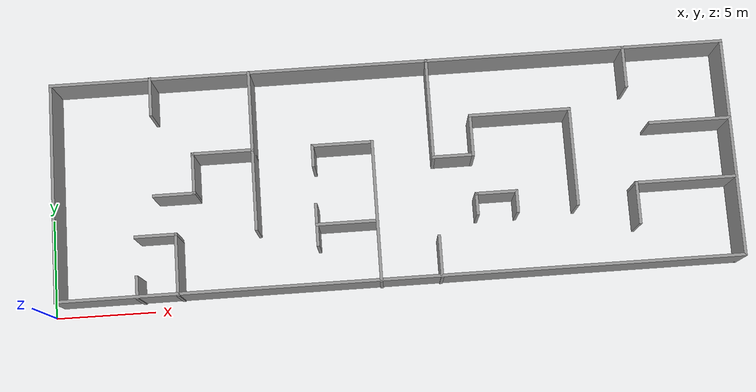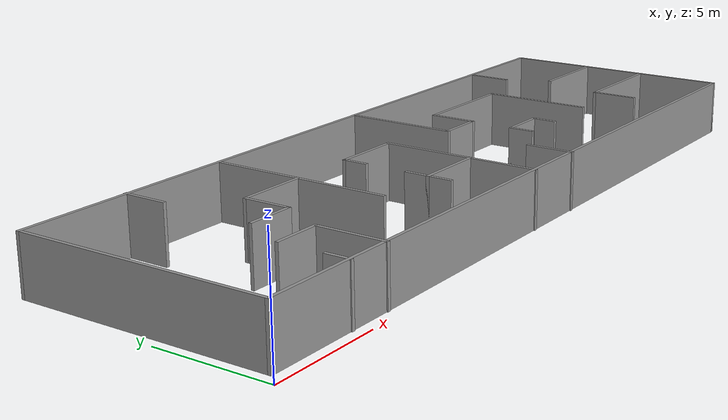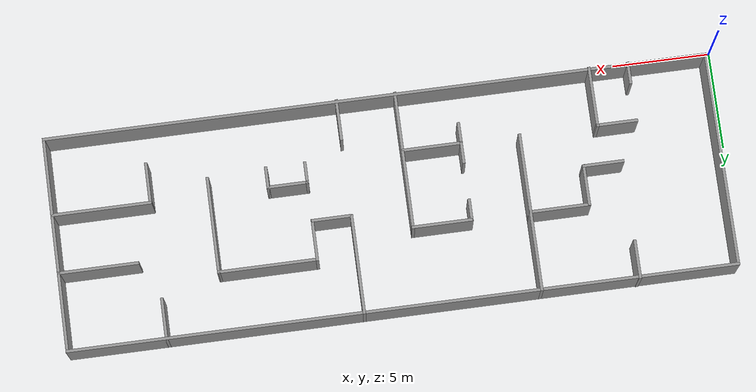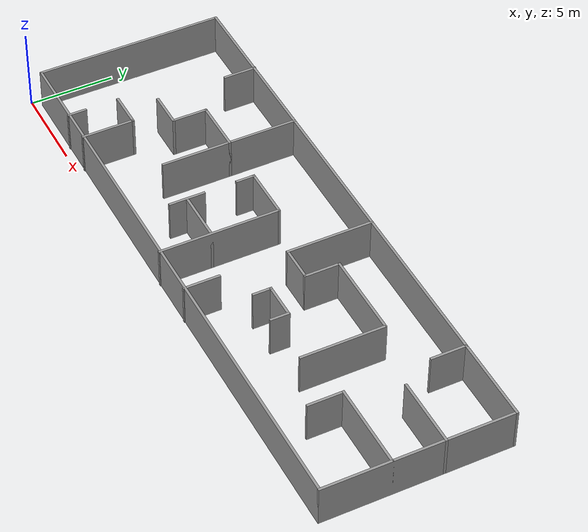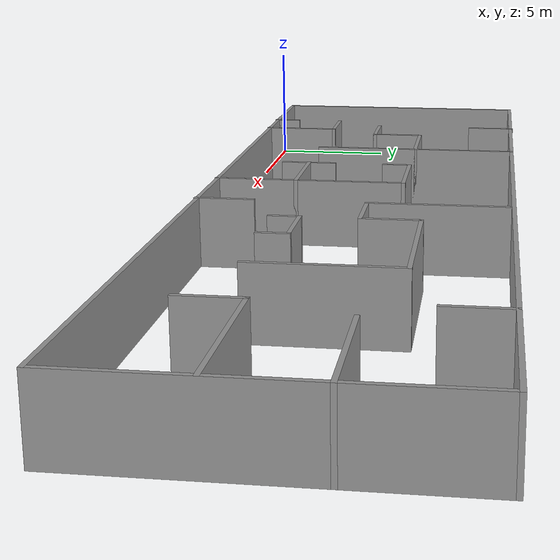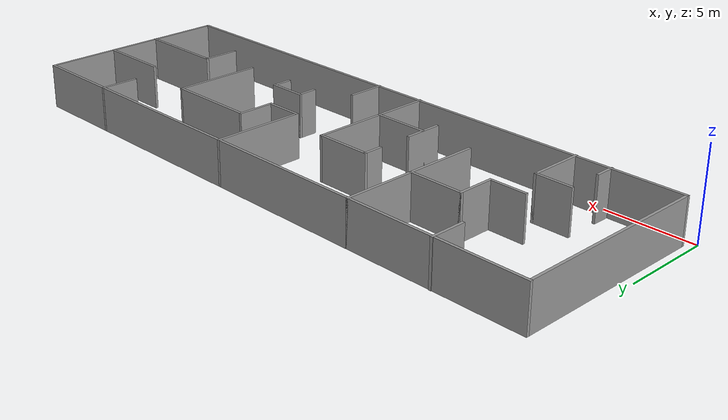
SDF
<?xml version='1.0'?>
<sdf version='1.6'>
  <model name='hackathon_maze'>
    <pose frame=''>17.5 6.01521 0 0 -0 0</pose>
    <link name='Wall_25'>
      <collision name='Wall_25_Collision'>
        <geometry>
          <box>
            <size>10.954 0.15 2.5</size>
          </box>
        </geometry>
        <pose frame=''>0 0 1.25 0 -0 0</pose>
      </collision>
      <visual name='Wall_25_Visual'>
        <pose frame=''>0 0 1.25 0 -0 0</pose>
        <geometry>
          <box>
            <size>10.954 0.15 2.5</size>
          </box>
        </geometry>
        <material>
          <script>
            <uri>file://media/materials/scripts/gazebo.material</uri>
            <name>Gazebo/Grey</name>
          </script>
          <ambient>1 1 1 1</ambient>
        </material>
        <meta>
          <layer>0</layer>
        </meta>
      </visual>
      <pose frame=''>-17 -0.067208 0 0 -0 1.5708</pose>
    </link>
    <link name='Wall_27'>
      <collision name='Wall_27_Collision'>
        <geometry>
          <box>
            <size>34.15 0.15 2.5</size>
          </box>
        </geometry>
        <pose frame=''>0 0 1.25 0 -0 0</pose>
      </collision>
      <visual name='Wall_27_Visual'>
        <pose frame=''>0 0 1.25 0 -0 0</pose>
        <geometry>
          <box>
            <size>34.15 0.15 2.5</size>
          </box>
        </geometry>
        <material>
          <script>
            <uri>file://media/materials/scripts/gazebo.material</uri>
            <name>Gazebo/Grey</name>
          </script>
          <ambient>1 1 1 1</ambient>
        </material>
        <meta>
          <layer>0</layer>
        </meta>
      </visual>
      <pose frame=''>0 -5.46921 0 0 -0 0</pose>
    </link>
    <link name='Wall_29'>
      <collision name='Wall_29_Collision'>
        <geometry>
          <box>
            <size>10.954 0.15 2.5</size>
          </box>
        </geometry>
        <pose frame=''>0 0 1.25 0 -0 0</pose>
      </collision>
      <visual name='Wall_29_Visual'>
        <pose frame=''>0 0 1.25 0 -0 0</pose>
        <geometry>
          <box>
            <size>10.954 0.15 2.5</size>
          </box>
        </geometry>
        <material>
          <script>
            <uri>file://media/materials/scripts/gazebo.material</uri>
            <name>Gazebo/Grey</name>
          </script>
          <ambient>1 1 1 1</ambient>
        </material>
        <meta>
          <layer>0</layer>
        </meta>
      </visual>
      <pose frame=''>17 -0.067208 0 0 -0 1.5708</pose>
    </link>
    <link name='Wall_31'>
      <collision name='Wall_31_Collision'>
        <geometry>
          <box>
            <size>34.15 0.15 2.5</size>
          </box>
        </geometry>
        <pose frame=''>0 0 1.25 0 -0 0</pose>
      </collision>
      <visual name='Wall_31_Visual'>
        <pose frame=''>0 0 1.25 0 -0 0</pose>
        <geometry>
          <box>
            <size>34.15 0.15 2.5</size>
          </box>
        </geometry>
        <material>
          <script>
            <uri>file://media/materials/scripts/gazebo.material</uri>
            <name>Gazebo/Grey</name>
          </script>
          <ambient>1 1 1 1</ambient>
        </material>
        <meta>
          <layer>0</layer>
        </meta>
      </visual>
      <pose frame=''>0 5.48479 0 0 -0 0</pose>
    </link>
    <link name='Wall_33'>
      <collision name='Wall_33_Collision'>
        <geometry>
          <box>
            <size>2 0.15 2.5</size>
          </box>
        </geometry>
        <pose frame=''>0 0 1.25 0 -0 0</pose>
      </collision>
      <visual name='Wall_33_Visual'>
        <pose frame=''>0 0 1.25 0 -0 0</pose>
        <geometry>
          <box>
            <size>2 0.15 2.5</size>
          </box>
        </geometry>
        <material>
          <script>
            <uri>file://media/materials/scripts/gazebo.material</uri>
            <name>Gazebo/Grey</name>
          </script>
          <ambient>1 1 1 1</ambient>
        </material>
        <meta>
          <layer>0</layer>
        </meta>
      </visual>
      <pose frame=''>-12 4.59021 0 0 -0 -1.5708</pose>
    </link>
    <link name='Wall_35'>
      <collision name='Wall_35_Collision'>
        <geometry>
          <box>
            <size>8.15 0.15 2.5</size>
          </box>
        </geometry>
        <pose frame=''>0 0 1.25 0 -0 0</pose>
      </collision>
      <visual name='Wall_35_Visual'>
        <pose frame=''>0 0 1.25 0 -0 0</pose>
        <geometry>
          <box>
            <size>8.15 0.15 2.5</size>
          </box>
        </geometry>
        <material>
          <script>
            <uri>file://media/materials/scripts/gazebo.material</uri>
            <name>Gazebo/Grey</name>
          </script>
          <ambient>1 1 1 1</ambient>
        </material>
        <meta>
          <layer>0</layer>
        </meta>
      </visual>
      <pose frame=''>-7 1.48479 0 0 -0 -1.5708</pose>
    </link>
    <link name='Wall_37'>
      <collision name='Wall_37_Collision'>
        <geometry>
          <box>
            <size>7.15 0.15 2.5</size>
          </box>
        </geometry>
        <pose frame=''>0 0 1.25 0 -0 0</pose>
      </collision>
      <visual name='Wall_37_Visual'>
        <pose frame=''>0 0 1.25 0 -0 0</pose>
        <geometry>
          <box>
            <size>7.15 0.15 2.5</size>
          </box>
        </geometry>
        <material>
          <script>
            <uri>file://media/materials/scripts/gazebo.material</uri>
            <name>Gazebo/Grey</name>
          </script>
          <ambient>1 1 1 1</ambient>
        </material>
        <meta>
          <layer>0</layer>
        </meta>
      </visual>
      <pose frame=''>-1 -2.01521 0 0 -0 1.5708</pose>
    </link>
    <link name='Wall_39'>
      <collision name='Wall_39_Collision'>
        <geometry>
          <box>
            <size>2.15 0.15 2.5</size>
          </box>
        </geometry>
        <pose frame=''>0 0 1.25 0 -0 0</pose>
      </collision>
      <visual name='Wall_39_Visual'>
        <pose frame=''>0 0 1.25 0 -0 0</pose>
        <geometry>
          <box>
            <size>2.15 0.15 2.5</size>
          </box>
        </geometry>
        <material>
          <script>
            <uri>file://media/materials/scripts/gazebo.material</uri>
            <name>Gazebo/Grey</name>
          </script>
          <ambient>1 1 1 1</ambient>
        </material>
        <meta>
          <layer>0</layer>
        </meta>
      </visual>
      <pose frame=''>2 -4.51521 0 0 -0 1.5708</pose>
    </link>
    <link name='Wall_41'>
      <collision name='Wall_41_Collision'>
        <geometry>
          <box>
            <size>5.15 0.15 2.5</size>
          </box>
        </geometry>
        <pose frame=''>0 0 1.25 0 -0 0</pose>
      </collision>
      <visual name='Wall_41_Visual'>
        <pose frame=''>0 0 1.25 0 -0 0</pose>
        <geometry>
          <box>
            <size>5.15 0.15 2.5</size>
          </box>
        </geometry>
        <material>
          <script>
            <uri>file://media/materials/scripts/gazebo.material</uri>
            <name>Gazebo/Grey</name>
          </script>
          <ambient>1 1 1 1</ambient>
        </material>
        <meta>
          <layer>0</layer>
        </meta>
      </visual>
      <pose frame=''>2 2.98479 0 0 -0 -1.5708</pose>
    </link>
    <link name='Wall_43'>
      <collision name='Wall_43_Collision'>
        <geometry>
          <box>
            <size>2.15 0.15 2.5</size>
          </box>
        </geometry>
        <pose frame=''>0 0 1.25 0 -0 0</pose>
      </collision>
      <visual name='Wall_43_Visual'>
        <pose frame=''>0 0 1.25 0 -0 0</pose>
        <geometry>
          <box>
            <size>2.15 0.15 2.5</size>
          </box>
        </geometry>
        <material>
          <script>
            <uri>file://media/materials/scripts/gazebo.material</uri>
            <name>Gazebo/Grey</name>
          </script>
          <ambient>1 1 1 1</ambient>
        </material>
        <meta>
          <layer>0</layer>
        </meta>
      </visual>
      <pose frame=''>3 0.484792 0 0 -0 0</pose>
    </link>
    <link name='Wall_45'>
      <collision name='Wall_45_Collision'>
        <geometry>
          <box>
            <size>2.15 0.15 2.5</size>
          </box>
        </geometry>
        <pose frame=''>0 0 1.25 0 -0 0</pose>
      </collision>
      <visual name='Wall_45_Visual'>
        <pose frame=''>0 0 1.25 0 -0 0</pose>
        <geometry>
          <box>
            <size>2.15 0.15 2.5</size>
          </box>
        </geometry>
        <material>
          <script>
            <uri>file://media/materials/scripts/gazebo.material</uri>
            <name>Gazebo/Grey</name>
          </script>
          <ambient>1 1 1 1</ambient>
        </material>
        <meta>
          <layer>0</layer>
        </meta>
      </visual>
      <pose frame=''>4 1.48479 0 0 -0 1.5708</pose>
    </link>
    <link name='Wall_47'>
      <collision name='Wall_47_Collision'>
        <geometry>
          <box>
            <size>5.15 0.15 2.5</size>
          </box>
        </geometry>
        <pose frame=''>0 0 1.25 0 -0 0</pose>
      </collision>
      <visual name='Wall_47_Visual'>
        <pose frame=''>0 0 1.25 0 -0 0</pose>
        <geometry>
          <box>
            <size>5.15 0.15 2.5</size>
          </box>
        </geometry>
        <material>
          <script>
            <uri>file://media/materials/scripts/gazebo.material</uri>
            <name>Gazebo/Grey</name>
          </script>
          <ambient>1 1 1 1</ambient>
        </material>
        <meta>
          <layer>0</layer>
        </meta>
      </visual>
      <pose frame=''>6.5 2.48479 0 0 -0 0</pose>
    </link>
    <link name='Wall_49'>
      <collision name='Wall_49_Collision'>
        <geometry>
          <box>
            <size>5 0.15 2.5</size>
          </box>
        </geometry>
        <pose frame=''>0 0 1.25 0 -0 0</pose>
      </collision>
      <visual name='Wall_49_Visual'>
        <pose frame=''>0 0 1.25 0 -0 0</pose>
        <geometry>
          <box>
            <size>5 0.15 2.5</size>
          </box>
        </geometry>
        <material>
          <script>
            <uri>file://media/materials/scripts/gazebo.material</uri>
            <name>Gazebo/Grey</name>
          </script>
          <ambient>1 1 1 1</ambient>
        </material>
        <meta>
          <layer>0</layer>
        </meta>
      </visual>
      <pose frame=''>9 0.059791 0 0 -0 -1.5708</pose>
    </link>
    <link name='Wall_51'>
      <collision name='Wall_51_Collision'>
        <geometry>
          <box>
            <size>1.15 0.15 2.5</size>
          </box>
        </geometry>
        <pose frame=''>0 0 1.25 0 -0 0</pose>
      </collision>
      <visual name='Wall_51_Visual'>
        <pose frame=''>0 0 1.25 0 -0 0</pose>
        <geometry>
          <box>
            <size>1.15 0.15 2.5</size>
          </box>
        </geometry>
        <material>
          <script>
            <uri>file://media/materials/scripts/gazebo.material</uri>
            <name>Gazebo/Grey</name>
          </script>
          <ambient>1 1 1 1</ambient>
        </material>
        <meta>
          <layer>0</layer>
        </meta>
      </visual>
      <pose frame=''>4 -2.01521 0 0 -0 1.5708</pose>
    </link>
    <link name='Wall_52'>
      <collision name='Wall_52_Collision'>
        <geometry>
          <box>
            <size>2.15 0.15 2.5</size>
          </box>
        </geometry>
        <pose frame=''>0 0 1.25 0 -0 0</pose>
      </collision>
      <visual name='Wall_52_Visual'>
        <pose frame=''>0 0 1.25 0 -0 0</pose>
        <geometry>
          <box>
            <size>2.15 0.15 2.5</size>
          </box>
        </geometry>
        <material>
          <script>
            <uri>file://media/materials/scripts/gazebo.material</uri>
            <name>Gazebo/Grey</name>
          </script>
          <ambient>1 1 1 1</ambient>
        </material>
        <meta>
          <layer>0</layer>
        </meta>
      </visual>
      <pose frame=''>5 -1.51521 0 0 -0 0</pose>
    </link>
    <link name='Wall_53'>
      <collision name='Wall_53_Collision'>
        <geometry>
          <box>
            <size>1.15 0.15 2.5</size>
          </box>
        </geometry>
        <pose frame=''>0 0 1.25 0 -0 0</pose>
      </collision>
      <visual name='Wall_53_Visual'>
        <pose frame=''>0 0 1.25 0 -0 0</pose>
        <geometry>
          <box>
            <size>1.15 0.15 2.5</size>
          </box>
        </geometry>
        <material>
          <script>
            <uri>file://media/materials/scripts/gazebo.material</uri>
            <name>Gazebo/Grey</name>
          </script>
          <ambient>1 1 1 1</ambient>
        </material>
        <meta>
          <layer>0</layer>
        </meta>
      </visual>
      <pose frame=''>6 -2.01521 0 0 -0 -1.5708</pose>
    </link>
    <link name='Wall_55'>
      <collision name='Wall_55_Collision'>
        <geometry>
          <box>
            <size>3.15 0.15 2.5</size>
          </box>
        </geometry>
        <pose frame=''>0 0 1.25 0 -0 0</pose>
      </collision>
      <visual name='Wall_55_Visual'>
        <pose frame=''>0 0 1.25 0 -0 0</pose>
        <geometry>
          <box>
            <size>3.15 0.15 2.5</size>
          </box>
        </geometry>
        <material>
          <script>
            <uri>file://media/materials/scripts/gazebo.material</uri>
            <name>Gazebo/Grey</name>
          </script>
          <ambient>1 1 1 1</ambient>
        </material>
        <meta>
          <layer>0</layer>
        </meta>
      </visual>
      <pose frame=''>-2.5 -2.51521 0 0 -0 3.14159</pose>
    </link>
    <link name='Wall_57'>
      <collision name='Wall_57_Collision'>
        <geometry>
          <box>
            <size>2.15 0.15 2.5</size>
          </box>
        </geometry>
        <pose frame=''>0 0 1.25 0 -0 0</pose>
      </collision>
      <visual name='Wall_57_Visual'>
        <pose frame=''>0 0 1.25 0 -0 0</pose>
        <geometry>
          <box>
            <size>2.15 0.15 2.5</size>
          </box>
        </geometry>
        <material>
          <script>
            <uri>file://media/materials/scripts/gazebo.material</uri>
            <name>Gazebo/Grey</name>
          </script>
          <ambient>1 1 1 1</ambient>
        </material>
        <meta>
          <layer>0</layer>
        </meta>
      </visual>
      <pose frame=''>-4 -2.51521 0 0 -0 -1.5708</pose>
    </link>
    <link name='Wall_60'>
      <collision name='Wall_60_Collision'>
        <geometry>
          <box>
            <size>3.15 0.15 2.5</size>
          </box>
        </geometry>
        <pose frame=''>0 0 1.25 0 -0 0</pose>
      </collision>
      <visual name='Wall_60_Visual'>
        <pose frame=''>0 0 1.25 0 -0 0</pose>
        <geometry>
          <box>
            <size>3.15 0.15 2.5</size>
          </box>
        </geometry>
        <material>
          <script>
            <uri>file://media/materials/scripts/gazebo.material</uri>
            <name>Gazebo/Grey</name>
          </script>
          <ambient>1 1 1 1</ambient>
        </material>
        <meta>
          <layer>0</layer>
        </meta>
      </visual>
      <pose frame=''>-2.5 1.48479 0 0 -0 3.14159</pose>
    </link>
    <link name='Wall_61'>
      <collision name='Wall_61_Collision'>
        <geometry>
          <box>
            <size>1.15 0.15 2.5</size>
          </box>
        </geometry>
        <pose frame=''>0 0 1.25 0 -0 0</pose>
      </collision>
      <visual name='Wall_61_Visual'>
        <pose frame=''>0 0 1.25 0 -0 0</pose>
        <geometry>
          <box>
            <size>1.15 0.15 2.5</size>
          </box>
        </geometry>
        <material>
          <script>
            <uri>file://media/materials/scripts/gazebo.material</uri>
            <name>Gazebo/Grey</name>
          </script>
          <ambient>1 1 1 1</ambient>
        </material>
        <meta>
          <layer>0</layer>
        </meta>
      </visual>
      <pose frame=''>-4 0.984792 0 0 -0 -1.5708</pose>
    </link>
    <link name='Wall_63'>
      <collision name='Wall_63_Collision'>
        <geometry>
          <box>
            <size>1.15 0.15 2.5</size>
          </box>
        </geometry>
        <pose frame=''>0 0 1.25 0 -0 0</pose>
      </collision>
      <visual name='Wall_63_Visual'>
        <pose frame=''>0 0 1.25 0 -0 0</pose>
        <geometry>
          <box>
            <size>1.15 0.15 2.5</size>
          </box>
        </geometry>
        <material>
          <script>
            <uri>file://media/materials/scripts/gazebo.material</uri>
            <name>Gazebo/Grey</name>
          </script>
          <ambient>1 1 1 1</ambient>
        </material>
        <meta>
          <layer>0</layer>
        </meta>
      </visual>
      <pose frame=''>-13 -5.01521 0 0 -0 1.5708</pose>
    </link>
    <link name='Wall_65'>
      <collision name='Wall_65_Collision'>
        <geometry>
          <box>
            <size>3.15 0.15 2.5</size>
          </box>
        </geometry>
        <pose frame=''>0 0 1.25 0 -0 0</pose>
      </collision>
      <visual name='Wall_65_Visual'>
        <pose frame=''>0 0 1.25 0 -0 0</pose>
        <geometry>
          <box>
            <size>3.15 0.15 2.5</size>
          </box>
        </geometry>
        <material>
          <script>
            <uri>file://media/materials/scripts/gazebo.material</uri>
            <name>Gazebo/Grey</name>
          </script>
          <ambient>1 1 1 1</ambient>
        </material>
        <meta>
          <layer>0</layer>
        </meta>
      </visual>
      <pose frame=''>-11 -4.01521 0 0 -0 1.5708</pose>
    </link>
    <link name='Wall_66'>
      <collision name='Wall_66_Collision'>
        <geometry>
          <box>
            <size>2.15 0.15 2.5</size>
          </box>
        </geometry>
        <pose frame=''>0 0 1.25 0 -0 0</pose>
      </collision>
      <visual name='Wall_66_Visual'>
        <pose frame=''>0 0 1.25 0 -0 0</pose>
        <geometry>
          <box>
            <size>2.15 0.15 2.5</size>
          </box>
        </geometry>
        <material>
          <script>
            <uri>file://media/materials/scripts/gazebo.material</uri>
            <name>Gazebo/Grey</name>
          </script>
          <ambient>1 1 1 1</ambient>
        </material>
        <meta>
          <layer>0</layer>
        </meta>
      </visual>
      <pose frame=''>-12 -2.51521 0 0 -0 3.14159</pose>
    </link>
    <link name='Wall_69'>
      <collision name='Wall_69_Collision'>
        <geometry>
          <box>
            <size>3.15 0.15 2.5</size>
          </box>
        </geometry>
        <pose frame=''>0 0 1.25 0 -0 0</pose>
      </collision>
      <visual name='Wall_69_Visual'>
        <pose frame=''>0 0 1.25 0 -0 0</pose>
        <geometry>
          <box>
            <size>3.15 0.15 2.5</size>
          </box>
        </geometry>
        <material>
          <script>
            <uri>file://media/materials/scripts/gazebo.material</uri>
            <name>Gazebo/Grey</name>
          </script>
          <ambient>1 1 1 1</ambient>
        </material>
        <meta>
          <layer>0</layer>
        </meta>
      </visual>
      <pose frame=''>-8.5 1.48479 0 0 -0 3.14159</pose>
    </link>
    <link name='Wall_71'>
      <collision name='Wall_71_Collision'>
        <geometry>
          <box>
            <size>2.15 0.15 2.5</size>
          </box>
        </geometry>
        <pose frame=''>0 0 1.25 0 -0 0</pose>
      </collision>
      <visual name='Wall_71_Visual'>
        <pose frame=''>0 0 1.25 0 -0 0</pose>
        <geometry>
          <box>
            <size>2.15 0.15 2.5</size>
          </box>
        </geometry>
        <material>
          <script>
            <uri>file://media/materials/scripts/gazebo.material</uri>
            <name>Gazebo/Grey</name>
          </script>
          <ambient>1 1 1 1</ambient>
        </material>
        <meta>
          <layer>0</layer>
        </meta>
      </visual>
      <pose frame=''>-10 0.484792 0 0 -0 -1.5708</pose>
    </link>
    <link name='Wall_73'>
      <collision name='Wall_73_Collision'>
        <geometry>
          <box>
            <size>2.15 0.15 2.5</size>
          </box>
        </geometry>
        <pose frame=''>0 0 1.25 0 -0 0</pose>
      </collision>
      <visual name='Wall_73_Visual'>
        <pose frame=''>0 0 1.25 0 -0 0</pose>
        <geometry>
          <box>
            <size>2.15 0.15 2.5</size>
          </box>
        </geometry>
        <material>
          <script>
            <uri>file://media/materials/scripts/gazebo.material</uri>
            <name>Gazebo/Grey</name>
          </script>
          <ambient>1 1 1 1</ambient>
        </material>
        <meta>
          <layer>0</layer>
        </meta>
      </visual>
      <pose frame=''>-11 -0.515208 0 0 -0 3.14159</pose>
    </link>
    <link name='Wall_76'>
      <collision name='Wall_76_Collision'>
        <geometry>
          <box>
            <size>5.15 0.15 2.5</size>
          </box>
        </geometry>
        <pose frame=''>0 0 1.25 0 -0 0</pose>
      </collision>
      <visual name='Wall_76_Visual'>
        <pose frame=''>0 0 1.25 0 -0 0</pose>
        <geometry>
          <box>
            <size>5.15 0.15 2.5</size>
          </box>
        </geometry>
        <material>
          <script>
            <uri>file://media/materials/scripts/gazebo.material</uri>
            <name>Gazebo/Grey</name>
          </script>
          <ambient>1 1 1 1</ambient>
        </material>
        <meta>
          <layer>0</layer>
        </meta>
      </visual>
      <pose frame=''>14.5 -1.51521 0 0 -0 3.14159</pose>
    </link>
    <link name='Wall_77'>
      <collision name='Wall_77_Collision'>
        <geometry>
          <box>
            <size>2.15 0.15 2.5</size>
          </box>
        </geometry>
        <pose frame=''>0 0 1.25 0 -0 0</pose>
      </collision>
      <visual name='Wall_77_Visual'>
        <pose frame=''>0 0 1.25 0 -0 0</pose>
        <geometry>
          <box>
            <size>2.15 0.15 2.5</size>
          </box>
        </geometry>
        <material>
          <script>
            <uri>file://media/materials/scripts/gazebo.material</uri>
            <name>Gazebo/Grey</name>
          </script>
          <ambient>1 1 1 1</ambient>
        </material>
        <meta>
          <layer>0</layer>
        </meta>
      </visual>
      <pose frame=''>12 -2.51521 0 0 -0 -1.5708</pose>
    </link>
    <link name='Wall_79'>
      <collision name='Wall_79_Collision'>
        <geometry>
          <box>
            <size>4.15 0.15 2.5</size>
          </box>
        </geometry>
        <pose frame=''>0 0 1.25 0 -0 0</pose>
      </collision>
      <visual name='Wall_79_Visual'>
        <pose frame=''>0 0 1.25 0 -0 0</pose>
        <geometry>
          <box>
            <size>4.15 0.15 2.5</size>
          </box>
        </geometry>
        <material>
          <script>
            <uri>file://media/materials/scripts/gazebo.material</uri>
            <name>Gazebo/Grey</name>
          </script>
          <ambient>1 1 1 1</ambient>
        </material>
        <meta>
          <layer>0</layer>
        </meta>
      </visual>
      <pose frame=''>15 1.48479 0 0 -0 3.14159</pose>
    </link>
    <link name='Wall_81'>
      <collision name='Wall_81_Collision'>
        <geometry>
          <box>
            <size>2.15 0.15 2.5</size>
          </box>
        </geometry>
        <pose frame=''>0 0 1.25 0 -0 0</pose>
      </collision>
      <visual name='Wall_81_Visual'>
        <pose frame=''>0 0 1.25 0 -0 0</pose>
        <geometry>
          <box>
            <size>2.15 0.15 2.5</size>
          </box>
        </geometry>
        <material>
          <script>
            <uri>file://media/materials/scripts/gazebo.material</uri>
            <name>Gazebo/Grey</name>
          </script>
          <ambient>1 1 1 1</ambient>
        </material>
        <meta>
          <layer>0</layer>
        </meta>
      </visual>
      <pose frame=''>12 4.48479 0 0 -0 -1.5708</pose>
    </link>
    <static>1</static>
  </model>
</sdf>
